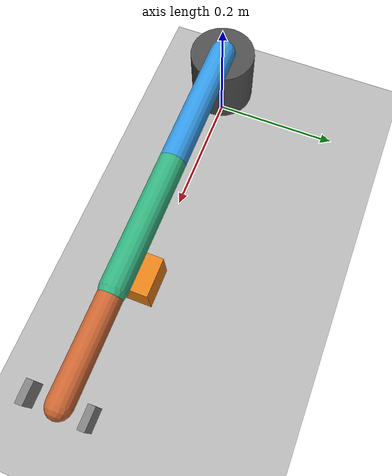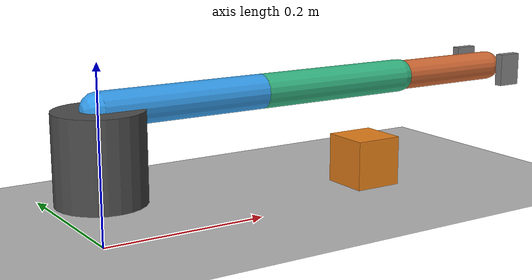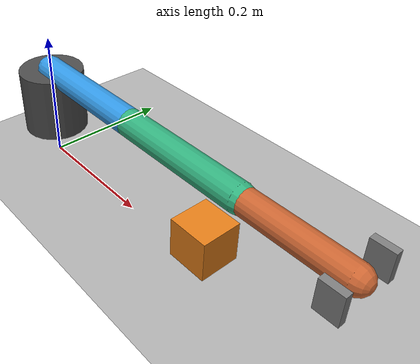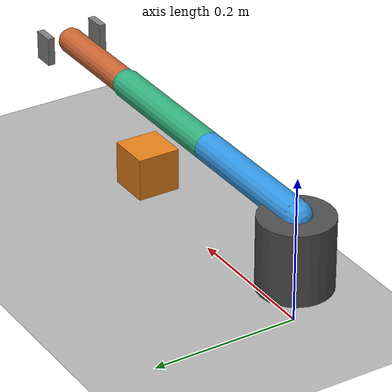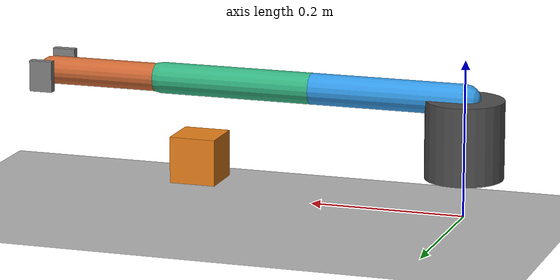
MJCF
<mujoco model="arm_grasp">
  <!-- 场景4: 3-DOF机械臂抓取方块
       核心概念: 正/逆运动学、关节空间控制、抓取稳定性(摩擦系数影响) -->

  <!-- 重要: 必须声明angle="radian"，否则MuJoCo默认把range等角度值当作"度数"解析，
       会导致比如range="-1.57 1.57"被解释成-1.57度到1.57度(几乎不能动)，
       这是MJCF里最容易踩的坑之一 -->
  <compiler angle="radian"/>

  <option timestep="0.002" gravity="0 0 -9.81" integrator="RK4"/>

  <default>
    <!-- 手臂连杆之间不需要互相碰撞检测(避免自身连杆卡住关节)，
         只有手指和方块/地面之间的碰撞才是我们关心的 -->
    <default class="armlink">
      <geom contype="0" conaffinity="0"/>
    </default>
  </default>

  <worldbody>
    <light pos="0 0 3" dir="0 0 -1" diffuse="1 1 1"/>
    <geom name="floor" type="plane" size="1 1 0.1" rgba="0.7 0.7 0.7 1"/>

    <!-- 待抓取的方块，摩擦系数可调以测试抓取成功率 -->
    <body name="cube" pos="0.35 0 0.05">
      <freejoint/>
      <geom name="cube_geom" type="box" size="0.03 0.03 0.03" mass="0.05"
            rgba="0.9 0.5 0.1 1" friction="1.0 0.05 0.001"/>
    </body>

    <!-- 3-DOF机械臂: 基座旋转 + 肩关节 + 肘关节 -->
    <body name="base" pos="0 0 0.1">
      <geom class="armlink" type="cylinder" size="0.05 0.05" rgba="0.3 0.3 0.3 1"/>
      <body name="link1" pos="0 0 0.05">
        <joint name="base_yaw" type="hinge" axis="0 0 1" range="-3.14 3.14"/>
        <geom class="armlink" type="capsule" fromto="0 0 0 0.2 0 0" size="0.02" mass="0.3" rgba="0.2 0.6 0.9 1"/>

        <body name="link2" pos="0.2 0 0">
          <joint name="shoulder" type="hinge" axis="0 1 0" range="-1.57 1.57" damping="0.5"/>
          <geom class="armlink" type="capsule" fromto="0 0 0 0.2 0 0" size="0.02" mass="0.3" rgba="0.2 0.7 0.5 1"/>

          <body name="link3" pos="0.2 0 0">
            <joint name="elbow" type="hinge" axis="0 1 0" range="-2.5 0" damping="0.5"/>
            <geom class="armlink" type="capsule" fromto="0 0 0 0.15 0 0" size="0.018" mass="0.2" rgba="0.8 0.4 0.2 1"/>

            <!-- 简化的平行夹爪，用两个滑动关节模拟开合 -->
            <body name="gripper_base" pos="0.15 0 0">
              <site name="gripper_center" pos="0 0 0" size="0.005"/>
              <body name="finger_left" pos="0 0.04 0">
                <joint name="finger_l" type="slide" axis="0 -1 0" range="0 0.04"/>
                <geom type="box" size="0.015 0.005 0.02" mass="0.02" rgba="0.5 0.5 0.5 1"
                      friction="1.5 0.05 0.001"/>
              </body>
              <body name="finger_right" pos="0 -0.04 0">
                <joint name="finger_r" type="slide" axis="0 1 0" range="0 0.04"/>
                <geom type="box" size="0.015 0.005 0.02" mass="0.02" rgba="0.5 0.5 0.5 1"
                      friction="1.5 0.05 0.001"/>
              </body>
            </body>
          </body>
        </body>
      </body>
    </body>
  </worldbody>

  <actuator>
    <position name="act_base_yaw" joint="base_yaw" kp="30"/>
    <position name="act_shoulder" joint="shoulder" kp="100"/>
    <position name="act_elbow" joint="elbow" kp="100"/>
    <position name="act_finger_l" joint="finger_l" kp="200"/>
    <position name="act_finger_r" joint="finger_r" kp="200"/>
  </actuator>
</mujoco>
